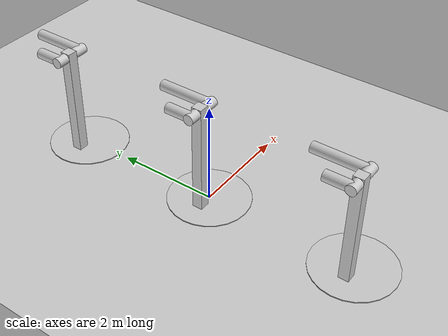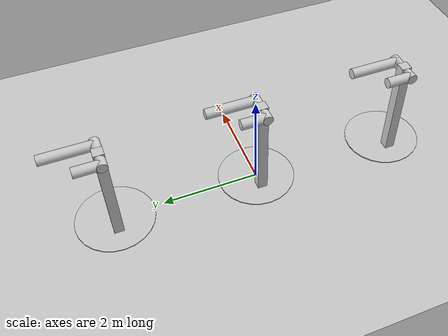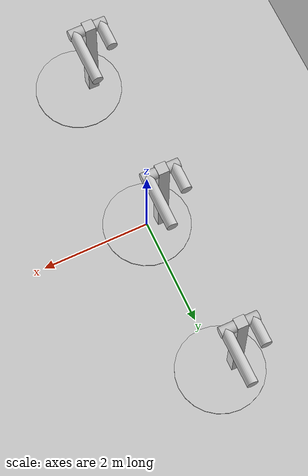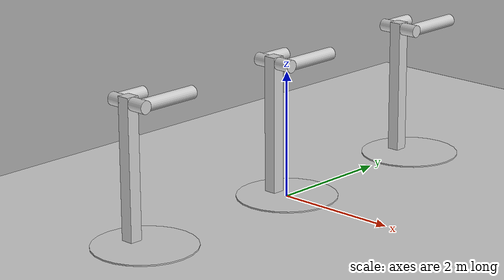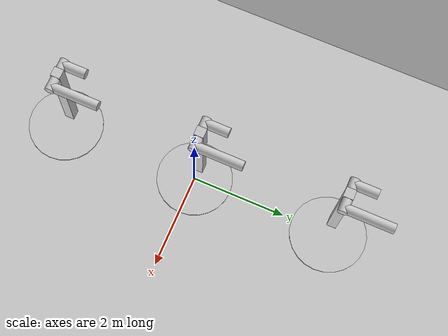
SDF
<?xml version="1.0" ?>
<sdf version="1.11">
  <world name="default">
    <physics name="1ms" type="ode">
      <max_step_size>0.001</max_step_size>
      <real_time_factor>0</real_time_factor>
    </physics>

    <plugin filename="gz-sim-physics-system" name="gz::sim::systems::Physics">
      <engine><filename>gz-physics-bullet-featherstone-plugin</filename></engine>
    </plugin>

    <plugin
      filename="gz-sim-forcetorque-system"
      name="gz::sim::systems::ForceTorque"/>

    <light type="directional" name="sun">
      <cast_shadows>true</cast_shadows>
      <pose>0 0 10 0 0 0</pose>
      <diffuse>0.8 0.8 0.8 1</diffuse>
      <specular>0.2 0.2 0.2 1</specular>
      <attenuation>
        <range>1000</range>
        <constant>0.9</constant>
        <linear>0.01</linear>
        <quadratic>0.001</quadratic>
      </attenuation>
      <direction>-0.5 0.1 -0.9</direction>
    </light>

    <model name="ground_plane">
      <static>true</static>
      <link name="link">
        <collision name="collision">
          <geometry>
            <plane>
              <normal>0 0 1</normal>
              <size>100 100</size>
            </plane>
          </geometry>
        </collision>
        <visual name="visual">
          <geometry>
            <plane>
              <normal>0 0 1</normal>
              <size>100 100</size>
            </plane>
          </geometry>
          <material>
            <ambient>0.8 0.8 0.8 1</ambient>
            <diffuse>0.8 0.8 0.8 1</diffuse>
            <specular>0.8 0.8 0.8 1</specular>
          </material>
        </visual>
      </link>
    </model>

    <model name="pendulum_with_base">
      <pose>0 0 0 0 0 0</pose>
      <link name="base">
        <inertial>
          <mass>100</mass>
        </inertial>
        <visual name="vis_plate_on_ground">
          <pose>0 0 0.01 0 0 0</pose>
          <geometry>
            <cylinder>
              <radius>0.8</radius>
              <length>0.02</length>
            </cylinder>
          </geometry>
          <material>
            <ambient>0.8 0.8 0.8 1</ambient>
            <diffuse>0.8 0.8 0.8 1</diffuse>
            <specular>0.8 0.8 0.8 1</specular>
          </material>
        </visual>
        <visual name="vis_pole">
          <pose>-0.275 0 1.1 0 0 0</pose>
          <geometry>
            <box>
              <size>0.2 0.2 2.2</size>
            </box>
          </geometry>
          <material>
            <ambient>0.8 0.8 0.8 1</ambient>
            <diffuse>0.8 0.8 0.8 1</diffuse>
            <specular>0.8 0.8 0.8 1</specular>
          </material>
        </visual>
        <collision name="col_plate_on_ground">
          <pose>0 0 0.01 0 0 0</pose>
          <geometry>
            <cylinder>
              <radius>0.8</radius>
              <length>0.02</length>
            </cylinder>
          </geometry>
        </collision>
        <collision name="col_pole">
          <pose>-0.275 0 1.1 0 0 0</pose>
          <geometry>
            <box>
              <size>0.2 0.2 2.2</size>
            </box>
          </geometry>
        </collision>
      </link>

      <!-- slow link, length 1, IC -90 degrees -->
      <link name="slow_link">
        <pose>0 0 2.1 -1.5708 0 0</pose>
        <self_collide>0</self_collide>
        <inertial>
          <mass>1.0</mass>
          <pose>0 0 0.5 0 0 0</pose>
          <inertia>
            <ixx>0.087</ixx>
            <ixy>0</ixy>
            <ixz>0</ixz>
            <iyy>0.087</iyy>
            <iyz>0</iyz>
            <izz>0.006</izz>
          </inertia>
        </inertial>
        <visual name="vis_slow_joint">
          <pose>-0.05 0 0 0 1.5708 0</pose>
          <geometry>
            <cylinder>
              <radius>0.1</radius>
              <length>0.3</length>
            </cylinder>
          </geometry>
          <material>
            <ambient>0.8 0.8 0.8 1</ambient>
            <diffuse>0.8 0.8 0.8 1</diffuse>
            <specular>0.8 0.8 0.8 1</specular>
          </material>
        </visual>
        <visual name="vis_cylinder">
          <pose>0 0 0.5 0 0 0</pose>
          <geometry>
            <cylinder>
              <radius>0.1</radius>
              <length>1.0</length>
            </cylinder>
          </geometry>
          <material>
            <ambient>0.8 0.8 0.8 1</ambient>
            <diffuse>0.8 0.8 0.8 1</diffuse>
            <specular>0.8 0.8 0.8 1</specular>
          </material>
        </visual>
        <collision name="col_slow_joint">
          <pose>-0.05 0 0 0 1.5708 0</pose>
          <geometry>
            <cylinder>
              <radius>0.1</radius>
              <length>0.3</length>
            </cylinder>
          </geometry>
        </collision>
        <collision name="col_cylinder">
          <pose>0 0 0.5 0 0 0</pose>
          <geometry>
            <cylinder>
              <radius>0.1</radius>
              <length>1.0</length>
            </cylinder>
          </geometry>
        </collision>
      </link>

      <!-- fast link, length 0.5, IC -90 degrees -->
      <link name="fast_link">
        <pose>-0.5 0 2.1 -1.5708 0 0</pose>
        <self_collide>0</self_collide>
        <inertial>
          <mass>1.0</mass>
          <pose>0 0 0.25 0 0 0</pose>
          <inertia>
            <ixx>0.024</ixx>
            <ixy>0</ixy>
            <ixz>0</ixz>
            <iyy>0.024</iyy>
            <iyz>0</iyz>
            <izz>0.006</izz>
          </inertia>
        </inertial>
        <visual name="vis_fast_joint">
          <pose>0.05 0 0 0 1.5708 0</pose>
          <geometry>
            <cylinder>
              <radius>0.1</radius>
              <length>0.3</length>
            </cylinder>
          </geometry>
          <material>
            <ambient>0.8 0.8 0.8 1</ambient>
            <diffuse>0.8 0.8 0.8 1</diffuse>
            <specular>0.8 0.8 0.8 1</specular>
          </material>
        </visual>
        <visual name="vis_cylinder_2">
          <pose>0 0 0.25 0 0 0</pose>
          <geometry>
            <cylinder>
              <radius>0.1</radius>
              <length>0.5</length>
            </cylinder>
          </geometry>
          <material>
            <ambient>0.8 0.8 0.8 1</ambient>
            <diffuse>0.8 0.8 0.8 1</diffuse>
            <specular>0.8 0.8 0.8 1</specular>
          </material>
        </visual>
        <collision name="col_fast_joint">
          <pose>0.05 0 0 0 1.5708 0</pose>
          <geometry>
            <cylinder>
              <radius>0.1</radius>
              <length>0.3</length>
            </cylinder>
          </geometry>
        </collision>
        <collision name="col_cylinder_2">
          <pose>0 0 0.2 0 0 0</pose>
          <geometry>
            <cylinder>
              <radius>0.1</radius>
              <length>0.5</length>
            </cylinder>
          </geometry>
        </collision>
      </link>

      <joint name="slow_joint" type="revolute">
        <parent>base</parent>
        <child>slow_link</child>
        <axis>
          <xyz>-1.0 0 0</xyz>
        </axis>
        <sensor name="ft_slow_joint" type="force_torque">
          <update_rate>0</update_rate>
          <plugin
            filename="FTSensorDeterminism"
            name="ft_sensor_determinism::FTSensorDeterminism"/>
        </sensor>
      </joint>

      <joint name="fast_joint" type="revolute">
        <parent>base</parent>
        <child>fast_link</child>
        <axis>
          <xyz>-1.0 0 0</xyz>
        </axis>
        <sensor name="ft_fast_joint" type="force_torque">
          <update_rate>0</update_rate>
          <plugin
            filename="FTSensorDeterminism"
            name="ft_sensor_determinism::FTSensorDeterminism"/>
        </sensor>
      </joint>

    </model>

    <model name="pendulum_with_base_mimic_slow_follows_fast">
      <pose>0 3 0 0 0 0</pose>
      <link name="base">
        <inertial>
          <mass>100</mass>
        </inertial>
        <visual name="vis_plate_on_ground">
          <pose>0 0 0.01 0 0 0</pose>
          <geometry>
            <cylinder>
              <radius>0.8</radius>
              <length>0.02</length>
            </cylinder>
          </geometry>
          <material>
            <ambient>0.8 0.8 0.8 1</ambient>
            <diffuse>0.8 0.8 0.8 1</diffuse>
            <specular>0.8 0.8 0.8 1</specular>
          </material>
        </visual>
        <visual name="vis_pole">
          <pose>-0.275 0 1.1 0 0 0</pose>
          <geometry>
            <box>
              <size>0.2 0.2 2.2</size>
            </box>
          </geometry>
          <material>
            <ambient>0.8 0.8 0.8 1</ambient>
            <diffuse>0.8 0.8 0.8 1</diffuse>
            <specular>0.8 0.8 0.8 1</specular>
          </material>
        </visual>
        <collision name="col_plate_on_ground">
          <pose>0 0 0.01 0 0 0</pose>
          <geometry>
            <cylinder>
              <radius>0.8</radius>
              <length>0.02</length>
            </cylinder>
          </geometry>
        </collision>
        <collision name="col_pole">
          <pose>-0.275 0 1.1 0 0 0</pose>
          <geometry>
            <box>
              <size>0.2 0.2 2.2</size>
            </box>
          </geometry>
        </collision>
      </link>

      <!-- slow link, length 1, IC -90 degrees -->
      <link name="slow_link">
        <pose>0 0 2.1 -1.5708 0 0</pose>
        <self_collide>0</self_collide>
        <inertial>
          <mass>1.0</mass>
          <pose>0 0 0.5 0 0 0</pose>
          <inertia>
            <ixx>0.087</ixx>
            <ixy>0</ixy>
            <ixz>0</ixz>
            <iyy>0.087</iyy>
            <iyz>0</iyz>
            <izz>0.006</izz>
          </inertia>
        </inertial>
        <visual name="vis_slow_joint">
          <pose>-0.05 0 0 0 1.5708 0</pose>
          <geometry>
            <cylinder>
              <radius>0.1</radius>
              <length>0.3</length>
            </cylinder>
          </geometry>
          <material>
            <ambient>0.8 0.8 0.8 1</ambient>
            <diffuse>0.8 0.8 0.8 1</diffuse>
            <specular>0.8 0.8 0.8 1</specular>
          </material>
        </visual>
        <visual name="vis_cylinder">
          <pose>0 0 0.5 0 0 0</pose>
          <geometry>
            <cylinder>
              <radius>0.1</radius>
              <length>1.0</length>
            </cylinder>
          </geometry>
          <material>
            <ambient>0.8 0.8 0.8 1</ambient>
            <diffuse>0.8 0.8 0.8 1</diffuse>
            <specular>0.8 0.8 0.8 1</specular>
          </material>
        </visual>
        <collision name="col_slow_joint">
          <pose>-0.05 0 0 0 1.5708 0</pose>
          <geometry>
            <cylinder>
              <radius>0.1</radius>
              <length>0.3</length>
            </cylinder>
          </geometry>
        </collision>
        <collision name="col_cylinder">
          <pose>0 0 0.5 0 0 0</pose>
          <geometry>
            <cylinder>
              <radius>0.1</radius>
              <length>1.0</length>
            </cylinder>
          </geometry>
        </collision>
      </link>

      <!-- fast link, length 0.5, IC -90 degrees -->
      <link name="fast_link">
        <pose>-0.5 0 2.1 -1.5708 0 0</pose>
        <self_collide>0</self_collide>
        <inertial>
          <mass>1.0</mass>
          <pose>0 0 0.25 0 0 0</pose>
          <inertia>
            <ixx>0.024</ixx>
            <ixy>0</ixy>
            <ixz>0</ixz>
            <iyy>0.024</iyy>
            <iyz>0</iyz>
            <izz>0.006</izz>
          </inertia>
        </inertial>
        <visual name="vis_fast_joint">
          <pose>0.05 0 0 0 1.5708 0</pose>
          <geometry>
            <cylinder>
              <radius>0.1</radius>
              <length>0.3</length>
            </cylinder>
          </geometry>
          <material>
            <ambient>0.8 0.8 0.8 1</ambient>
            <diffuse>0.8 0.8 0.8 1</diffuse>
            <specular>0.8 0.8 0.8 1</specular>
          </material>
        </visual>
        <visual name="vis_cylinder_2">
          <pose>0 0 0.25 0 0 0</pose>
          <geometry>
            <cylinder>
              <radius>0.1</radius>
              <length>0.5</length>
            </cylinder>
          </geometry>
          <material>
            <ambient>0.8 0.8 0.8 1</ambient>
            <diffuse>0.8 0.8 0.8 1</diffuse>
            <specular>0.8 0.8 0.8 1</specular>
          </material>
        </visual>
        <collision name="col_fast_joint">
          <pose>0.05 0 0 0 1.5708 0</pose>
          <geometry>
            <cylinder>
              <radius>0.1</radius>
              <length>0.3</length>
            </cylinder>
          </geometry>
        </collision>
        <collision name="col_cylinder_2">
          <pose>0 0 0.2 0 0 0</pose>
          <geometry>
            <cylinder>
              <radius>0.1</radius>
              <length>0.5</length>
            </cylinder>
          </geometry>
        </collision>
      </link>

      <joint name="slow_joint" type="revolute">
        <parent>base</parent>
        <child>slow_link</child>
        <axis>
          <xyz>-1.0 0 0</xyz>
          <mimic joint="fast_joint" axis="axis">
            <multiplier>1</multiplier>
          </mimic>
        </axis>
        <sensor name="ft_slow_joint" type="force_torque">
          <update_rate>0</update_rate>
          <plugin
            filename="FTSensorDeterminism"
            name="ft_sensor_determinism::FTSensorDeterminism"/>
        </sensor>
      </joint>

      <joint name="fast_joint" type="revolute">
        <parent>base</parent>
        <child>fast_link</child>
        <axis>
          <xyz>-1.0 0 0</xyz>
        </axis>
        <sensor name="ft_fast_joint" type="force_torque">
          <update_rate>0</update_rate>
          <plugin
            filename="FTSensorDeterminism"
            name="ft_sensor_determinism::FTSensorDeterminism"/>
        </sensor>
      </joint>

    </model>

    <model name="pendulum_with_base_mimic_fast_follows_slow">
      <pose>0 -3 0 0 0 0</pose>
      <link name="base">
        <inertial>
          <mass>100</mass>
        </inertial>
        <visual name="vis_plate_on_ground">
          <pose>0 0 0.01 0 0 0</pose>
          <geometry>
            <cylinder>
              <radius>0.8</radius>
              <length>0.02</length>
            </cylinder>
          </geometry>
          <material>
            <ambient>0.8 0.8 0.8 1</ambient>
            <diffuse>0.8 0.8 0.8 1</diffuse>
            <specular>0.8 0.8 0.8 1</specular>
          </material>
        </visual>
        <visual name="vis_pole">
          <pose>-0.275 0 1.1 0 0 0</pose>
          <geometry>
            <box>
              <size>0.2 0.2 2.2</size>
            </box>
          </geometry>
          <material>
            <ambient>0.8 0.8 0.8 1</ambient>
            <diffuse>0.8 0.8 0.8 1</diffuse>
            <specular>0.8 0.8 0.8 1</specular>
          </material>
        </visual>
        <collision name="col_plate_on_ground">
          <pose>0 0 0.01 0 0 0</pose>
          <geometry>
            <cylinder>
              <radius>0.8</radius>
              <length>0.02</length>
            </cylinder>
          </geometry>
        </collision>
        <collision name="col_pole">
          <pose>-0.275 0 1.1 0 0 0</pose>
          <geometry>
            <box>
              <size>0.2 0.2 2.2</size>
            </box>
          </geometry>
        </collision>
      </link>

      <!-- slow link, length 1, IC -90 degrees -->
      <link name="slow_link">
        <pose>0 0 2.1 -1.5708 0 0</pose>
        <self_collide>0</self_collide>
        <inertial>
          <mass>1.0</mass>
          <pose>0 0 0.5 0 0 0</pose>
          <inertia>
            <ixx>0.087</ixx>
            <ixy>0</ixy>
            <ixz>0</ixz>
            <iyy>0.087</iyy>
            <iyz>0</iyz>
            <izz>0.006</izz>
          </inertia>
        </inertial>
        <visual name="vis_slow_joint">
          <pose>-0.05 0 0 0 1.5708 0</pose>
          <geometry>
            <cylinder>
              <radius>0.1</radius>
              <length>0.3</length>
            </cylinder>
          </geometry>
          <material>
            <ambient>0.8 0.8 0.8 1</ambient>
            <diffuse>0.8 0.8 0.8 1</diffuse>
            <specular>0.8 0.8 0.8 1</specular>
          </material>
        </visual>
        <visual name="vis_cylinder">
          <pose>0 0 0.5 0 0 0</pose>
          <geometry>
            <cylinder>
              <radius>0.1</radius>
              <length>1.0</length>
            </cylinder>
          </geometry>
          <material>
            <ambient>0.8 0.8 0.8 1</ambient>
            <diffuse>0.8 0.8 0.8 1</diffuse>
            <specular>0.8 0.8 0.8 1</specular>
          </material>
        </visual>
        <collision name="col_slow_joint">
          <pose>-0.05 0 0 0 1.5708 0</pose>
          <geometry>
            <cylinder>
              <radius>0.1</radius>
              <length>0.3</length>
            </cylinder>
          </geometry>
        </collision>
        <collision name="col_cylinder">
          <pose>0 0 0.5 0 0 0</pose>
          <geometry>
            <cylinder>
              <radius>0.1</radius>
              <length>1.0</length>
            </cylinder>
          </geometry>
        </collision>
      </link>

      <!-- fast link, length 0.5, IC -90 degrees -->
      <link name="fast_link">
        <pose>-0.5 0 2.1 -1.5708 0 0</pose>
        <self_collide>0</self_collide>
        <inertial>
          <mass>1.0</mass>
          <pose>0 0 0.25 0 0 0</pose>
          <inertia>
            <ixx>0.024</ixx>
            <ixy>0</ixy>
            <ixz>0</ixz>
            <iyy>0.024</iyy>
            <iyz>0</iyz>
            <izz>0.006</izz>
          </inertia>
        </inertial>
        <visual name="vis_fast_joint">
          <pose>0.05 0 0 0 1.5708 0</pose>
          <geometry>
            <cylinder>
              <radius>0.1</radius>
              <length>0.3</length>
            </cylinder>
          </geometry>
          <material>
            <ambient>0.8 0.8 0.8 1</ambient>
            <diffuse>0.8 0.8 0.8 1</diffuse>
            <specular>0.8 0.8 0.8 1</specular>
          </material>
        </visual>
        <visual name="vis_cylinder_2">
          <pose>0 0 0.25 0 0 0</pose>
          <geometry>
            <cylinder>
              <radius>0.1</radius>
              <length>0.5</length>
            </cylinder>
          </geometry>
          <material>
            <ambient>0.8 0.8 0.8 1</ambient>
            <diffuse>0.8 0.8 0.8 1</diffuse>
            <specular>0.8 0.8 0.8 1</specular>
          </material>
        </visual>
        <collision name="col_fast_joint">
          <pose>0.05 0 0 0 1.5708 0</pose>
          <geometry>
            <cylinder>
              <radius>0.1</radius>
              <length>0.3</length>
            </cylinder>
          </geometry>
        </collision>
        <collision name="col_cylinder_2">
          <pose>0 0 0.2 0 0 0</pose>
          <geometry>
            <cylinder>
              <radius>0.1</radius>
              <length>0.5</length>
            </cylinder>
          </geometry>
        </collision>
      </link>

      <joint name="slow_joint" type="revolute">
        <parent>base</parent>
        <child>slow_link</child>
        <axis>
          <xyz>-1.0 0 0</xyz>
        </axis>
        <sensor name="ft_slow_joint" type="force_torque">
          <update_rate>0</update_rate>
          <plugin
            filename="FTSensorDeterminism"
            name="ft_sensor_determinism::FTSensorDeterminism"/>
        </sensor>
      </joint>

      <joint name="fast_joint" type="revolute">
        <parent>base</parent>
        <child>fast_link</child>
        <axis>
          <xyz>-1.0 0 0</xyz>
          <mimic joint="slow_joint" axis="axis">
            <multiplier>1</multiplier>
          </mimic>
        </axis>
        <sensor name="ft_fast_joint" type="force_torque">
          <update_rate>0</update_rate>
          <plugin
            filename="FTSensorDeterminism"
            name="ft_sensor_determinism::FTSensorDeterminism"/>
        </sensor>
      </joint>

    </model>

  </world>
</sdf>
